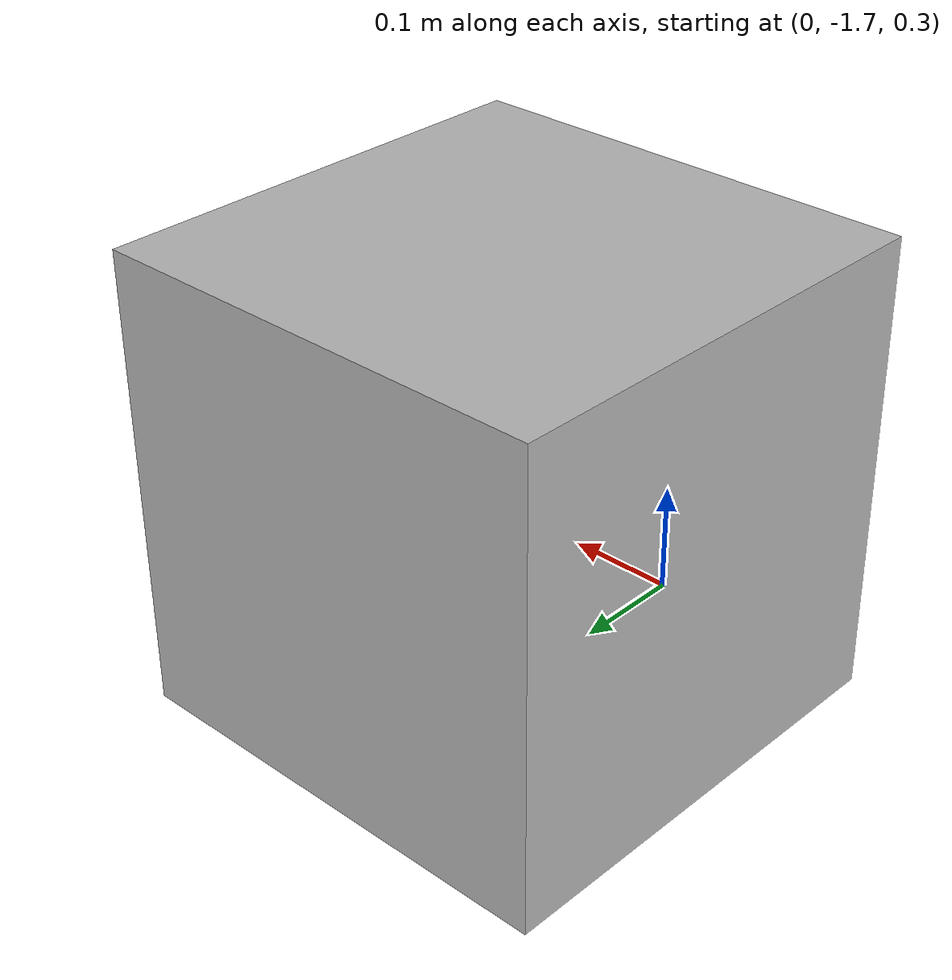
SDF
<?xml version="1.0" ?>
<sdf version="1.6">
  <model name="markerblock">
    <pose>0 0 0.5 0 0 0</pose>
    <link name="box">
      <pose>0 -1.5 0 0 0 0</pose>
      <collision name="collision">
        <geometry>
          <box>
            <size>0.4 0.4 0.4</size>
          </box>
        </geometry>
      </collision>
      <visual name="visual">
        <geometry>
          <box>
            <size>0.4 0.4 0.4</size>
          </box>
        </geometry>
        <material>
          <script>
            <uri>file:///root/rosie/markerblock_obj/materials/scripts/textures.material</uri>
            <uri>file:///root/rosie/markerblock_obj/materials/textures</uri>
            <name>markerblock/markers_alvar</name>
          </script>
        </material>
      </visual>
    </link>
  </model>
</sdf>
